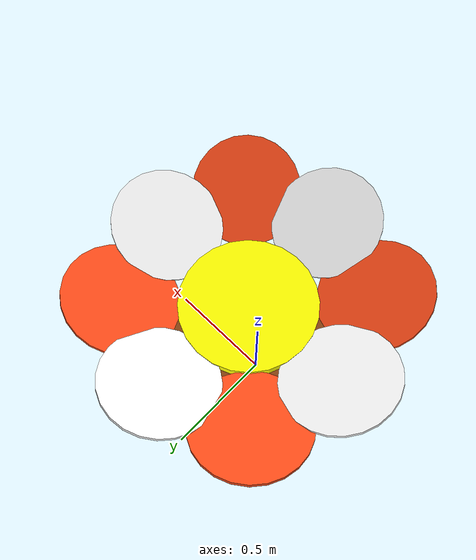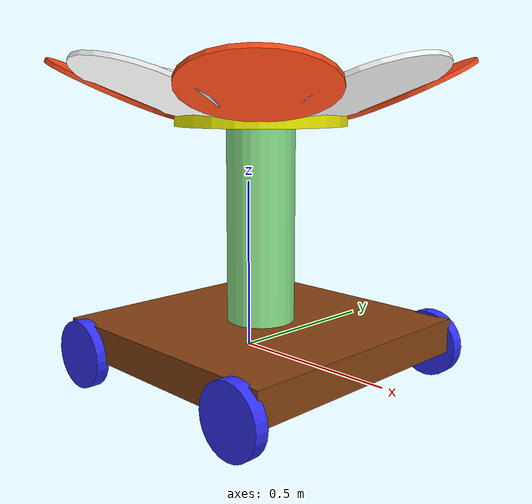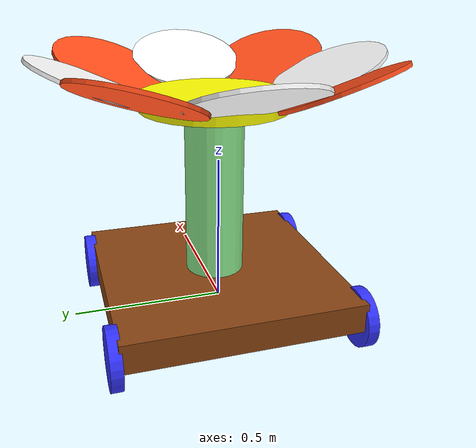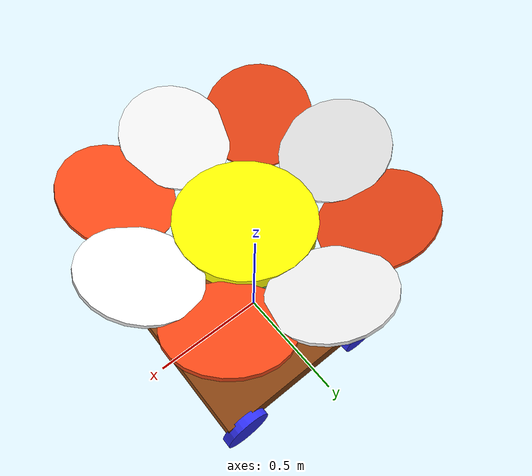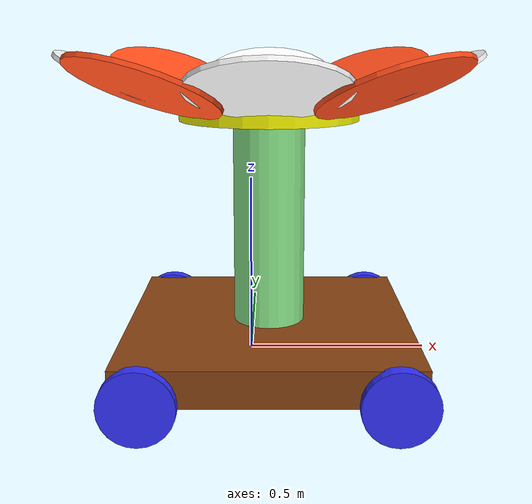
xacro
<?xml version="1.0" ?>
<robot name='robot' xmlns:xacro="http://ros.org/wiki/xacro">

    <xacro:include filename="$(find robot_description)/urdf/gazebo.urdf.xacro" />
    <!--xacro:include filename="$(find robot_description)/urdf/lidar.urdf.xacro" /-->
    <!--xacro:include filename="$(find robot_description)/urdf/depth.urdf.xacro" /-->

    <xacro:property name="chassis_length" value="0.8"/>
    <xacro:property name="chassis_width" value="0.8"/>
    <xacro:property name="chassis_height" value="0.1"/>
    <xacro:property name="stem_radius" value="0.1"/>
    <xacro:property name="stem_height" value="0.6"/>
    <xacro:property name="flower_disk_radius" value="0.25"/>
    <xacro:property name="flower_disk_height" value="0.05"/>
    <xacro:property name="petal_radius" value="0.2"/>
    <xacro:property name="petal_height" value="0.05"/>
    <xacro:property name="wheel_radius" value="0.1"/>
    <xacro:property name="wheel_thickness" value="0.039"/>
    <xacro:property name="wheel_mass" value="0.075"/>
    <xacro:property name="wheel_offset_x" value="0.35"/>
    <xacro:property name="wheel_offset_y" value="0.41"/>
    <xacro:property name="wheel_offset_z" value="0.01"/>

    <xacro:property name="mass" value="1.0"/>

    <material name="brown">
    	<color rgba="0.545098 0.270588 0.0745098 1"/>
    </material>

    <material name="white">
        <color rgba="1 1 1 1" />
    </material>

    <material name="green">
        <color rgba="0.564706 0.933333 0.564706 1" />
    </material>

    <material name="yellow">
        <color rgba="1 1 0 1"/>
    </material>

    <material name="orange">
        <color rgba="1 0.3 0.1 1"/>
    </material>

    <material name="blue">
        <color rgba="0.2 0.2 1 1"/>
    </material>

    <material name="black">
        <color rgba="0 0 0 1"/>
    </material>

    <material name="red">
        <color rgba="1 0 0 1"/>
    </material>

    <link name="base_link">
    </link>

    <link name="base_footprint">
    </link>

    <joint name="base_footprint_joint" type="fixed">
        <parent link="base_link"/>
        <child link="base_footprint"/>
        <origin xyz="0 0 -0.138" rpy="0 0 0"/>
    </joint>

    <joint name="chassis_joint" type="fixed">
        <parent link="base_link"/>
        <child link="chassis"/>
        <origin xyz="${-wheel_offset_x} 0 ${-wheel_offset_z}"/>
    </joint>

    <link name='chassis'>

    <inertial>
        <origin xyz="${chassis_length/2} 0 ${chassis_height/2}" rpy="0 0 0"/>
        <mass value="${mass}" />
        <inertia ixx="${(1/12) * mass * (chassis_width*chassis_width+chassis_height*chassis_height)}" ixy="0.0" ixz="0.0"
                 iyy="${(1/12) * mass * (chassis_length*chassis_length+chassis_height*chassis_height)}" iyz="0.0"
                 izz="${(1/12) * mass * (chassis_length*chassis_length+chassis_width*chassis_width)}" />
    </inertial>
    <visual>
        <origin xyz="${chassis_length/2} 0 ${chassis_height/2}"/>
        <geometry>
            <box size="${chassis_length} ${chassis_width} ${chassis_height}"/>
        </geometry>
        <material name="brown"/>
    </visual>
    <collision>
        <origin xyz="${chassis_length/2} 0 ${chassis_height/2}"/>
        <geometry>
            <box size="${chassis_length} ${chassis_width} ${chassis_height}"/>
        </geometry>
    </collision>
    </link>

    <gazebo reference="chassis">
        <material>Gazebo/Brown</material>
    </gazebo>

    <joint name="front_left_wheel_joint" type="continuous">
        <parent link="base_link"/>
        <child link="front_left_wheel"/>
        <origin xyz="0.375 ${wheel_offset_y} 0" rpy="-${pi/2} 0 0" />
        <axis xyz="0 0 1"/>
    </joint>

    <link name="front_left_wheel">
        <visual>
            <geometry>
                <cylinder radius="${wheel_radius}" length="${wheel_thickness}"/>
            </geometry>
            <material name="blue"/>
        </visual>
        <collision>
            <geometry>
                <sphere radius="${wheel_radius}"/>
            </geometry>
        </collision>
        <inertial>
            <origin xyz="0 0 0" rpy="0 0 0"/>
            <mass value="${wheel_mass}" />
            <inertia ixx="${(1/12) * wheel_mass * (3*wheel_radius*wheel_radius + wheel_thickness*wheel_thickness)}" ixy="0.0" ixz="0.0"
                     iyy="${(1/12) * wheel_mass * (3*wheel_radius*wheel_radius + wheel_thickness*wheel_thickness)}" iyz="0.0"
                     izz="${(1/2) * wheel_mass * (wheel_radius*wheel_radius)}" />
        </inertial>
    </link>

    <gazebo reference="front_left_wheel">
        <material>Gazebo/Blue</material>
    </gazebo>

    <joint name="rear_left_wheel_joint" type="continuous">
        <parent link="base_link"/>
        <child link="rear_left_wheel"/>
        <origin xyz="-0.275 ${wheel_offset_y} 0" rpy="-${pi/2} 0 0" />
        <axis xyz="0 0 1"/>
    </joint>

    <link name="rear_left_wheel">
        <visual>
            <geometry>
                <cylinder radius="${wheel_radius}" length="${wheel_thickness}"/>
            </geometry>
            <material name="blue"/>
        </visual>
        <collision>
            <geometry>
                <sphere radius="${wheel_radius}"/>
            </geometry>
        </collision>
        <inertial>
            <origin xyz="0 0 0" rpy="0 0 0"/>
            <mass value="${wheel_mass}" />
            <inertia ixx="${(1/12) * wheel_mass * (3*wheel_radius*wheel_radius + wheel_thickness*wheel_thickness)}" ixy="0.0" ixz="0.0"
                     iyy="${(1/12) * wheel_mass * (3*wheel_radius*wheel_radius + wheel_thickness*wheel_thickness)}" iyz="0.0"
                     izz="${(1/2) * wheel_mass * (wheel_radius*wheel_radius)}" />
        </inertial>
    </link>

    <gazebo reference="rear_left_wheel">
        <material>Gazebo/Blue</material>
    </gazebo>

    <joint name="front_right_wheel_joint" type="continuous">
        <parent link="base_link"/>
        <child link="front_right_wheel"/>
        <origin xyz="0.375 ${-wheel_offset_y} 0" rpy="${pi/2} 0 0" />
        <axis xyz="0 0 -1"/>
    </joint>

    <link name="front_right_wheel">
        <visual>
            <geometry>
                <cylinder radius="${wheel_radius}" length="${wheel_thickness}"/>
            </geometry>
            <material name="blue"/>
        </visual>
        <collision>
            <geometry>
                <sphere radius="${wheel_radius}"/>
            </geometry>
        </collision>
        <inertial>
            <origin xyz="0 0 0" rpy="0 0 0"/>
            <mass value="${wheel_mass}" />
            <inertia ixx="${(1/12) * wheel_mass * (3*wheel_radius*wheel_radius + wheel_thickness*wheel_thickness)}" ixy="0.0" ixz="0.0"
                     iyy="${(1/12) * wheel_mass * (3*wheel_radius*wheel_radius + wheel_thickness*wheel_thickness)}" iyz="0.0"
                     izz="${(1/2) * wheel_mass * (wheel_radius*wheel_radius)}" />
        </inertial>
    </link>

    <gazebo reference="front_right_wheel">
        <material>Gazebo/Blue</material>
    </gazebo>

    <joint name="rear_right_wheel_joint" type="continuous">
        <parent link="base_link"/>
        <child link="rear_right_wheel"/>
        <origin xyz="-0.275 ${-wheel_offset_y} 0" rpy="${pi/2} 0 0" />
        <axis xyz="0 0 -1"/>
    </joint>

    <link name="rear_right_wheel">
        <visual>
            <geometry>
                <cylinder radius="${wheel_radius}" length="${wheel_thickness}"/>
            </geometry>
            <material name="blue"/>
        </visual>
        <collision>
            <geometry>
                <sphere radius="${wheel_radius}"/>
            </geometry>
        </collision>
        <inertial>
            <origin xyz="0 0 0" rpy="0 0 0"/>
            <mass value="${wheel_mass}" />
            <inertia ixx="${(1/12) * wheel_mass * (3*wheel_radius*wheel_radius + wheel_thickness*wheel_thickness)}" ixy="0.0" ixz="0.0"
                     iyy="${(1/12) * wheel_mass * (3*wheel_radius*wheel_radius + wheel_thickness*wheel_thickness)}" iyz="0.0"
                     izz="${(1/2) * wheel_mass * (wheel_radius*wheel_radius)}" />
        </inertial>
    </link>

    <gazebo reference="rear_right_wheel">
        <material>Gazebo/Blue</material>
    </gazebo>

     <!-- Соединение stem с chassis -->
    <joint name="stem_joint" type="fixed">
    	<parent link="chassis"/>
    	<child link="stem"/>
    	<origin xyz="${chassis_length/2} 0 ${chassis_height + stem_height/2 }"/>
    </joint>

    <link name="stem">
    <visual>
        <geometry>
            <cylinder radius="${stem_radius}" length="${stem_height}"/> <!-- Измените параметры, если необходимо -->
        </geometry>
        <material name="green"/>
    </visual>
    <collision>
        <geometry>
            <cylinder radius="${stem_radius}" length="${stem_height}"/>
        </geometry>
    </collision>
    </link>

    <gazebo reference="stem">
        <material>Gazebo/Green</material>
    </gazebo>

    <joint name="flower_disk_joint" type="fixed">
    	<parent link="stem"/>
    	<child link="flower_disk"/>
    	<origin xyz="0 0 ${stem_height/2}"/>
    </joint>

    <link name="flower_disk">
    <visual>
        <geometry>
            <cylinder radius="${flower_disk_radius}" length="${flower_disk_height}"/> <!-- Измените параметры, если необходимо -->
        </geometry>
        <material name="yellow"/>
    </visual>
    <collision>
        <geometry>
            <cylinder radius="${flower_disk_radius}" length="${flower_disk_height}"/>
        </geometry>
    </collision>
    </link>

    <gazebo reference="flower_disk">
        <material>Gazebo/Yellow</material>
    </gazebo>

    <!-- Соединение petal с flower с углом 10 градусов -->
    <joint name="petal_one_joint" type="fixed">
    	<parent link="flower_disk"/>
    	<child link="petal_one"/>
    	<axis xyz="0 0 1"/>
 	<origin rpy="0 -0.4 0" xyz="0.4 0 0.08"/>

    </joint>

    <link name="petal_one">
    <visual>
        <geometry>
            <cylinder radius="${petal_radius}" length="${petal_height/4}"/> <!-- Измените параметры, если необходимо -->
        </geometry>
        <material name="white"/>
    </visual>
    <collision>
        <geometry>
            <cylinder radius="${petal_radius}" length="${petal_height/4}"/>
        </geometry>
    </collision>
    </link>

    <gazebo reference="petal_one">
        <material>Gazebo/White</material>
    </gazebo>

     <!-- Соединение petal с flower с углом 10 градусов -->
    <joint name="petal_two_joint" type="fixed">
    	<parent link="flower_disk"/>
    	<child link="petal_two"/>
    	<axis xyz="0 0 1"/>
 	<origin rpy="0 0.4 0" xyz="-0.4 0 0.08"/>

    </joint>

    <link name="petal_two">
    <visual>
        <geometry>
            <cylinder radius="${petal_radius}" length="${petal_height/4}"/> <!-- Измените параметры, если необходимо -->
        </geometry>
        <material name="white"/>
    </visual>
    <collision>
        <geometry>
            <cylinder radius="${petal_radius}" length="${petal_height/4}"/>
        </geometry>
    </collision>
    </link>

    <gazebo reference="petal_two">
        <material>Gazebo/White</material>
    </gazebo>

    <!-- Соединение petal с flower с углом 10 градусов -->
    <joint name="petal_three_joint" type="fixed">
    	<parent link="flower_disk"/>
    	<child link="petal_three"/>
    	<axis xyz="0 0 1"/>
 	<origin rpy="0.4 0 0" xyz="0 0.4 0.08"/>

    </joint>

    <link name="petal_three">
    <visual>
        <geometry>
            <cylinder radius="${petal_radius}" length="${petal_height/4}"/> <!-- Измените параметры, если необходимо -->
        </geometry>
        <material name="white"/>
    </visual>
    <collision>
        <geometry>
            <cylinder radius="${petal_radius}" length="${petal_height/4}"/>
        </geometry>
    </collision>
    </link>

    <gazebo reference="petal_three">
        <material>Gazebo/White</material>
    </gazebo>

    <!-- Соединение petal с flower с углом 10 градусов -->
    <joint name="petal_four_joint" type="fixed">
    	<parent link="flower_disk"/>
    	<child link="petal_four"/>
    	<axis xyz="0 0 1"/>
 	<origin rpy="0.3 -0.3 0" xyz="0.3 0.3 0.08"/>

    </joint>

    <link name="petal_four">
    <visual>
        <geometry>
            <cylinder radius="${petal_radius}" length="${petal_height/4}"/> <!-- Измените параметры, если необходимо -->
        </geometry>
        <material name="orange"/>
    </visual>
    <collision>
        <geometry>
            <cylinder radius="${petal_radius}" length="${petal_height/4}"/>
        </geometry>
    </collision>
    </link>

    <gazebo reference="petal_four">
        <material>Gazebo/Orange</material>
    </gazebo>

    <!-- Соединение petal с flower с углом 10 градусов -->
    <joint name="petal_five_joint" type="fixed">
    	<parent link="flower_disk"/>
    	<child link="petal_five"/>
    	<axis xyz="0 0 1"/>
 	<origin rpy="-0.4 0 0" xyz="0 -0.4 0.08"/>

    </joint>

    <link name="petal_five">
    <visual>
        <geometry>
            <cylinder radius="${petal_radius}" length="${petal_height/4}"/> <!-- Измените параметры, если необходимо -->
        </geometry>
        <material name="white"/>
    </visual>
    <collision>
        <geometry>
            <cylinder radius="${petal_radius}" length="${petal_height/4}"/>
        </geometry>
    </collision>
    </link>

    <gazebo reference="petal_five">
        <material>Gazebo/White</material>
    </gazebo>

    <!-- Соединение petal с flower с углом 10 градусов -->
    <joint name="petal_six_joint" type="fixed">
    	<parent link="flower_disk"/>
    	<child link="petal_six"/>
    	<axis xyz="0 0 1"/>
 	<origin rpy="-0.3 0.3 0" xyz="-0.3 -0.3 0.08"/>

    </joint>

    <link name="petal_six">
    <visual>
        <geometry>
            <cylinder radius="${petal_radius}" length="${petal_height/4}"/> <!-- Измените параметры, если необходимо -->
        </geometry>
        <material name="orange"/>
    </visual>
    <collision>
        <geometry>
            <cylinder radius="${petal_radius}" length="${petal_height/4}"/>
        </geometry>
    </collision>
    </link>

    <gazebo reference="petal_six">
        <material>Gazebo/Orange</material>
    </gazebo>

    <!-- Соединение petal с flower с углом 10 градусов -->
    <joint name="petal_seven_joint" type="fixed">
    	<parent link="flower_disk"/>
    	<child link="petal_seven"/>
    	<axis xyz="0 0 1"/>
 	<origin rpy="-0.3 -0.3 0" xyz="0.3 -0.3 0.08"/>

    </joint>

    <link name="petal_seven">
    <visual>
        <geometry>
            <cylinder radius="${petal_radius}" length="${petal_height/4}"/> <!-- Измените параметры, если необходимо -->
        </geometry>
        <material name="orange"/>
    </visual>
    <collision>
        <geometry>
            <cylinder radius="${petal_radius}" length="${petal_height/4}"/>
        </geometry>
    </collision>
    </link>

    <gazebo reference="petal_seven">
        <material>Gazebo/Orange</material>
    </gazebo>

    <!-- Соединение petal с flower с углом 10 градусов -->
    <joint name="petal_eight_joint" type="fixed">
    	<parent link="flower_disk"/>
    	<child link="petal_eight"/>
    	<axis xyz="0 0 1"/>
 	<origin rpy="0.3 0.3 0" xyz="-0.3 0.3 0.08"/>

    </joint>

    <link name="petal_eight">
    <visual>
        <geometry>
            <cylinder radius="${petal_radius}" length="${petal_height/4}"/> <!-- Измените параметры, если необходимо -->
        </geometry>
        <material name="orange"/>
    </visual>
    <collision>
        <geometry>
            <cylinder radius="${petal_radius}" length="${petal_height/4}"/>
        </geometry>
    </collision>
    </link>

    <gazebo reference="petal_eight">
        <material>Gazebo/Orange</material>
    </gazebo>

</robot>
